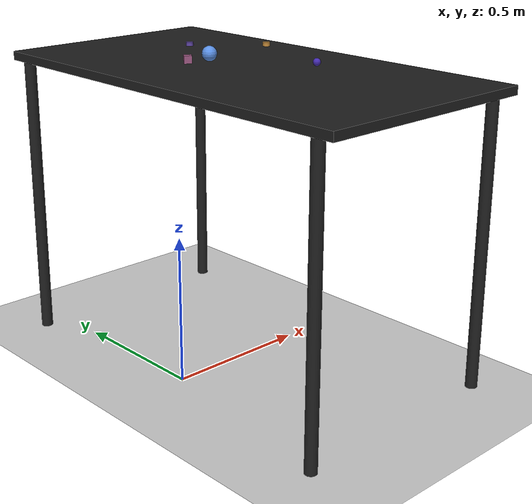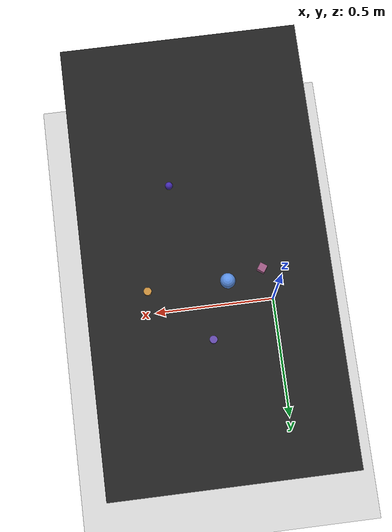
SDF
<?xml version="1.0" ?>
<sdf version="1.6">
  <world name="arm_world">
    <plugin filename="gz-sim-physics-system" name="gz::sim::systems::Physics">
      <engine>
        <filename>libgz-physics-bullet-featherstone-plugin.so</filename>
      </engine>
    </plugin>
    <plugin filename="gz-sim-user-commands-system" name="gz::sim::systems::UserCommands"/>
    <plugin filename="gz-sim-scene-broadcaster-system" name="gz::sim::systems::SceneBroadcaster"/>
    <plugin filename="gz-sim-sensors-system" name="gz::sim::systems::Sensors">
      <render_engine>ogre2</render_engine>
    </plugin>
    <gravity>0.0 0.0 -9.8</gravity>
    <scene>
      <shadows>false</shadows>
    </scene>
    <gui>
      <camera name="user_camera">
        <pose>0.75 -0.75 1.4 0 0.29 2.21</pose>
      </camera>
    </gui>
    <include>
      <uri>https://fuel.gazebosim.org/1.0/OpenRobotics/models/Sun</uri>
    </include>
    <model name="table">
      <static>true</static>
      <include>
        <uri>model://table</uri>
      </include>
      <pose>0.29 0 0 0 0 1.5708</pose>
    </model>
    <model name="ground_plane">
      <static>true</static>
      <link name="link">
        <collision name="collision">
          <geometry>
            <plane>
              <normal>0 0 1</normal>
            </plane>
          </geometry>
          <surface>
            <friction>
              <ode>
                <mu>1.0</mu>
                <mu2>1.0</mu2>
              </ode>
            </friction>
          </surface>
        </collision>
        <visual name="visual">
          <geometry>
            <plane>
              <normal>0 0 1</normal>
              <size>100 100</size>
            </plane>
          </geometry>
          <material>
            <ambient>0.8 0.8 0.8 1</ambient>
            <diffuse>0.8 0.8 0.8 1</diffuse>
            <specular>0.8 0.8 0.8 1</specular>
          </material>
        </visual>
      </link>
    </model>
    <model name="sphere_s_0">
      <pose>0.38 -0.225 1.05 0 0 5.8</pose>
      <link name="sphere_s_0_link">
        <collision name="sphere_s_0_collision">
          <geometry>
            <sphere>
              <radius>0.0125</radius>
            </sphere>
          </geometry>
        </collision>
        <visual name="sphere_s_0_visual">
          <geometry>
            <sphere>
              <radius>0.0125</radius>
            </sphere>
          </geometry>
          <material>
            <ambient>0.26 0.16 0.68 1</ambient>
            <diffuse>0.26 0.16 0.68 1</diffuse>
          </material>
        </visual>
        <velocity_decay>
          <linear>1</linear>
          <angular>1</angular>
        </velocity_decay>
      </link>
    </model>
    <model name="sphere_m_1">
      <pose>0.231 0.111 1.05 0 0 5.09</pose>
      <link name="sphere_m_1_link">
        <collision name="sphere_m_1_collision">
          <geometry>
            <sphere>
              <radius>0.025</radius>
            </sphere>
          </geometry>
        </collision>
        <visual name="sphere_m_1_visual">
          <geometry>
            <sphere>
              <radius>0.025</radius>
            </sphere>
          </geometry>
          <material>
            <ambient>0.35 0.56 0.89 1</ambient>
            <diffuse>0.35 0.56 0.89 1</diffuse>
          </material>
        </visual>
        <velocity_decay>
          <linear>1</linear>
          <angular>1</angular>
        </velocity_decay>
      </link>
    </model>
    <model name="cube_s_2">
      <pose>0.117 0.084 1.05 0 0 2.53</pose>
      <link name="cube_s_2_link">
        <collision name="cube_s_2_collision">
          <geometry>
            <box>
              <size>0.025 0.025 0.025</size>
            </box>
          </geometry>
        </collision>
        <visual name="cube_s_2_visual">
          <geometry>
            <box>
              <size>0.025 0.025 0.025</size>
            </box>
          </geometry>
          <material>
            <ambient>0.59 0.33 0.49 1</ambient>
            <diffuse>0.59 0.33 0.49 1</diffuse>
          </material>
        </visual>
        <velocity_decay>
          <linear>1</linear>
          <angular>1</angular>
        </velocity_decay>
      </link>
    </model>
    <model name="cylinder_s_3">
      <pose>0.488 0.114 1.05 0 0 4.08</pose>
      <link name="cylinder_s_3_link">
        <collision name="cylinder_s_3_collision">
          <geometry>
            <cylinder>
              <radius>0.0125</radius>
              <length>0.0125</length>
            </cylinder>
          </geometry>
        </collision>
        <visual name="cylinder_s_3_visual">
          <geometry>
            <cylinder>
              <radius>0.0125</radius>
              <length>0.0125</length>
            </cylinder>
          </geometry>
          <material>
            <ambient>0.75 0.53 0.22 1</ambient>
            <diffuse>0.75 0.53 0.22 1</diffuse>
          </material>
        </visual>
        <velocity_decay>
          <linear>1</linear>
          <angular>1</angular>
        </velocity_decay>
      </link>
    </model>
    <model name="cylinder_s_4">
      <pose>0.3 0.293 1.05 0 0 2.66</pose>
      <link name="cylinder_s_4_link">
        <collision name="cylinder_s_4_collision">
          <geometry>
            <cylinder>
              <radius>0.0125</radius>
              <length>0.0125</length>
            </cylinder>
          </geometry>
        </collision>
        <visual name="cylinder_s_4_visual">
          <geometry>
            <cylinder>
              <radius>0.0125</radius>
              <length>0.0125</length>
            </cylinder>
          </geometry>
          <material>
            <ambient>0.37 0.27 0.64 1</ambient>
            <diffuse>0.37 0.27 0.64 1</diffuse>
          </material>
        </visual>
        <velocity_decay>
          <linear>1</linear>
          <angular>1</angular>
        </velocity_decay>
      </link>
    </model>
  </world>
</sdf>

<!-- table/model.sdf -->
<sdf version="1.5">
  <model name="table">
    <static>true</static>
    <link name="link">
      <collision name="surface">
        <pose>0 0 1.0 0 0 0</pose>
        <geometry>
          <box>
            <size>1.5 0.8 0.03</size>
          </box>
        </geometry>
        <surface>
          <friction>
            <ode>
              <mu>0.6</mu>
              <mu2>0.6</mu2>
            </ode>
          </friction>
        </surface>
      </collision>
      <visual name="surface">
        <pose>0 0 1.0 0 0 0</pose>
        <geometry>
          <box>
            <size>1.5 0.8 0.03</size>
          </box>
        </geometry>
        <material>
          <script>
            <uri>file://media/materials/scripts/gazebo.material</uri>
            <name>Gazebo/Black</name>
          </script>
        </material>
      </visual>
      <collision name="front_left_leg">
        <pose>0.68 0.38 0.5 0 0 0</pose>
        <geometry>
          <cylinder>
            <radius>0.02</radius>
            <length>1.0</length>
          </cylinder>
        </geometry>
      </collision>
      <visual name="front_left_leg">
        <pose>0.68 0.38 0.5 0 0 0</pose>
        <geometry>
          <cylinder>
            <radius>0.02</radius>
            <length>1.0</length>
          </cylinder>
        </geometry>
        <material>
          <script>
            <uri>file://media/materials/scripts/gazebo.material</uri>
            <name>Gazebo/Black</name>
          </script>
        </material>
      </visual>
      <collision name="front_right_leg">
        <pose>0.68 -0.38 0.5 0 0 0</pose>
        <geometry>
          <cylinder>
            <radius>0.02</radius>
            <length>1.0</length>
          </cylinder>
        </geometry>
      </collision>
      <visual name="front_right_leg">
        <pose>0.68 -0.38 0.5 0 0 0</pose>
        <geometry>
          <cylinder>
            <radius>0.02</radius>
            <length>1.0</length>
          </cylinder>
        </geometry>
        <material>
          <script>
            <uri>file://media/materials/scripts/gazebo.material</uri>
            <name>Gazebo/Black</name>
          </script>
        </material>
      </visual>
      <collision name="back_right_leg">
        <pose>-0.68 -0.38 0.5 0 0 0</pose>
        <geometry>
          <cylinder>
            <radius>0.02</radius>
            <length>1.0</length>
          </cylinder>
        </geometry>
      </collision>
      <visual name="back_right_leg">
        <pose>-0.68 -0.38 0.5 0 0 0</pose>
        <geometry>
          <cylinder>
            <radius>0.02</radius>
            <length>1.0</length>
          </cylinder>
        </geometry>
        <material>
          <script>
            <uri>file://media/materials/scripts/gazebo.material</uri>
            <name>Gazebo/Black</name>
          </script>
        </material>
      </visual>
      <collision name="back_left_leg">
        <pose>-0.68 0.38 0.5 0 0 0</pose>
        <geometry>
          <cylinder>
            <radius>0.02</radius>
            <length>1.0</length>
          </cylinder>
        </geometry>
      </collision>
      <visual name="back_left_leg">
        <pose>-0.68 0.38 0.5 0 0 0</pose>
        <geometry>
          <cylinder>
            <radius>0.02</radius>
            <length>1.0</length>
          </cylinder>
        </geometry>
        <material>
          <script>
            <uri>file://media/materials/scripts/gazebo.material</uri>
            <name>Gazebo/Black</name>
          </script>
        </material>
      </visual>
    </link>
  </model>
</sdf>
